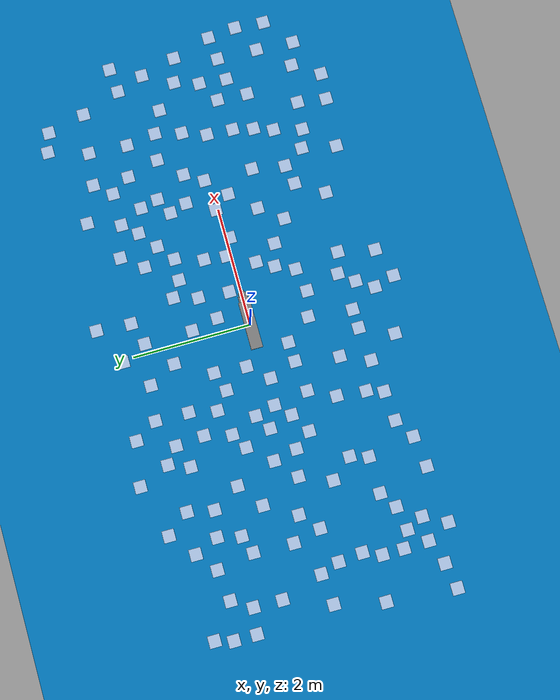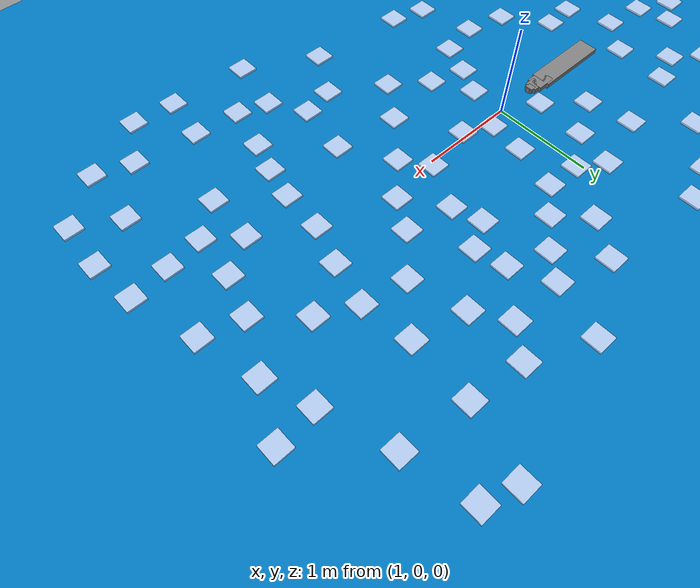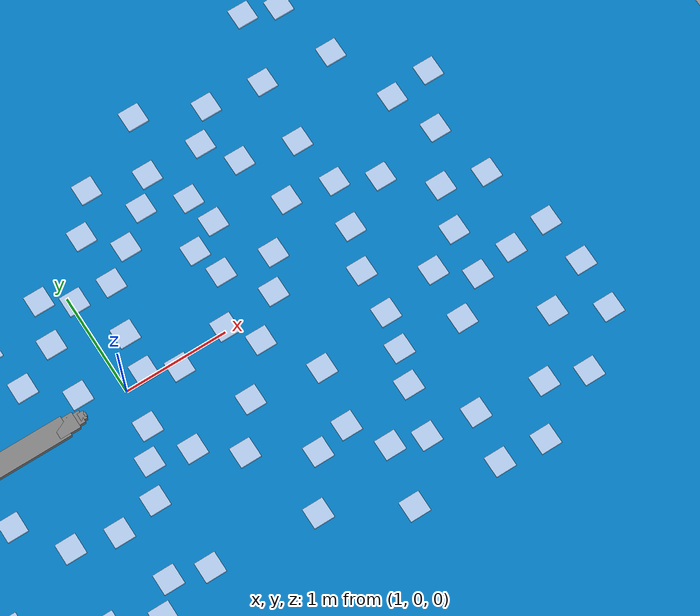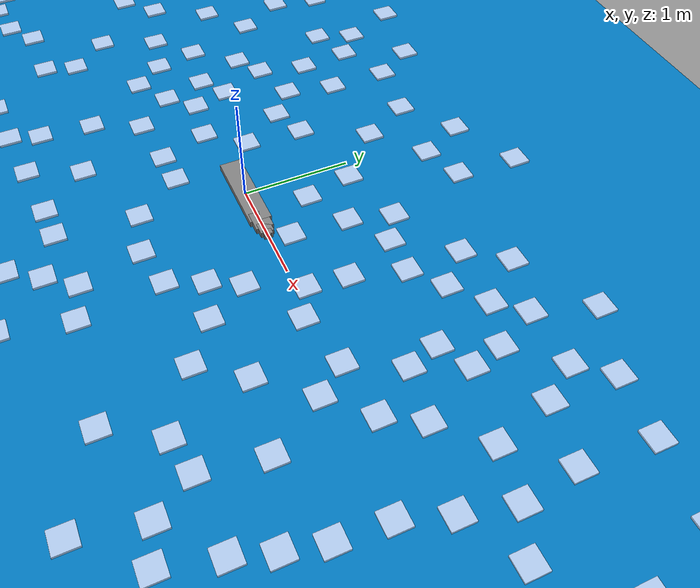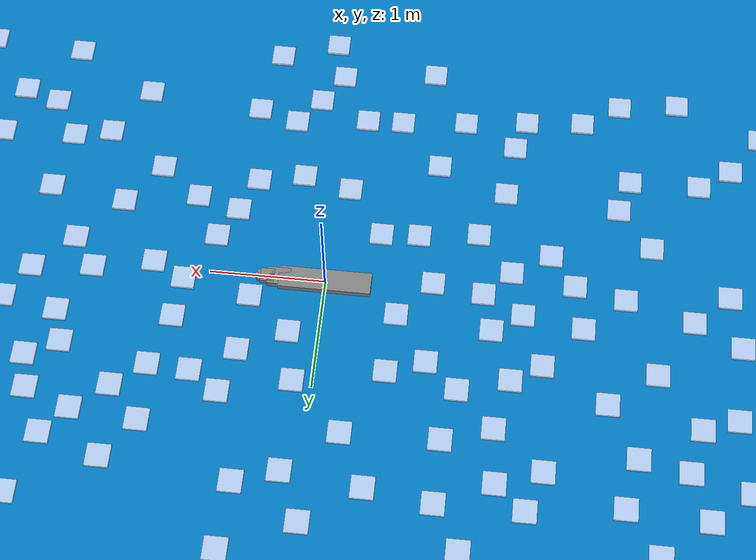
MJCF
<mujoco model="asv_with_ice_random">
  <compiler angle="degree"/>
  <option gravity="0 0 -9.81"/>

  <worldbody>

    <light directional="true" ambient="0.2 0.2 0.2" diffuse="0.8 0.8 0.8" specular="0.3 0.3 0.3" castshadow="false" pos="0 0 4" dir="0 0 -1" name="light0"></light>

    <camera name="follow_asv" mode="fixed" target="asv" pos="0 0 10" euler="30 0 0"/>

    <geom type="plane" size="10 5 0.1" rgba="0 0.47 0.74 1"
        contype="0" conaffinity="0"/>

    <!-- ASV -->
    <body name="asv" pos="0 0 0">
      <joint name="asv_x" type="slide" axis="1 0 0"/>
      <joint name="asv_y" type="slide" axis="0 1 0"/>
      <joint name="asv_yaw" type="hinge" axis="0 0 1"/>

      <geom type="box" size="0.4 0.1 0.05" pos="0 0 0" friction="0.00 0.00 0.00"/>

      <geom type="box" size="0.1 0.08 0.05" pos="0.4 0 0"  friction="0.00 0.00 0.00"/>

      <geom type="box" size="0.06 0.06 0.05" pos="0.5 0 0"  friction="0.00 0.00 0.00"/>

      <geom type="box" size="0.03 0.04 0.05" pos="0.56 0 0"  friction="0.00 0.00 0.00"/>

      <geom type="box" size="0.01 0.02 0.05" pos="0.59 0 0"  friction="0.00 0.00 0.00"/>

      <camera name="follow_asv1" mode="track" target="asv" pos="0 0 10" euler="30 0 0"/>

    </body>

    <body name="ice_0" pos="-3.67 1.58 0">
      <joint name="ice_0_x" type="slide" axis="1 0 0"/>
      <joint name="ice_0_y" type="slide" axis="0 1 0"/>
      <joint name="ice_0_yaw" type="hinge" axis="0 0 1"/>
      <geom type="box" size="0.1 0.1 0.02" rgba="0.9 0.9 1.0 0.8" friction="0.00 0.00 0.00"/>
    </body>
    <body name="ice_1" pos="-0.52 1.84 0">
      <joint name="ice_1_x" type="slide" axis="1 0 0"/>
      <joint name="ice_1_y" type="slide" axis="0 1 0"/>
      <joint name="ice_1_yaw" type="hinge" axis="0 0 1"/>
      <geom type="box" size="0.1 0.1 0.02" rgba="0.9 0.9 1.0 0.8" friction="0.00 0.00 0.00"/>
    </body>
    <body name="ice_2" pos="-1.46 0.32 0">
      <joint name="ice_2_x" type="slide" axis="1 0 0"/>
      <joint name="ice_2_y" type="slide" axis="0 1 0"/>
      <joint name="ice_2_yaw" type="hinge" axis="0 0 1"/>
      <geom type="box" size="0.1 0.1 0.02" rgba="0.9 0.9 1.0 0.8" friction="0.00 0.00 0.00"/>
    </body>
    <body name="ice_3" pos="-3.18 0.08 0">
      <joint name="ice_3_x" type="slide" axis="1 0 0"/>
      <joint name="ice_3_y" type="slide" axis="0 1 0"/>
      <joint name="ice_3_yaw" type="hinge" axis="0 0 1"/>
      <geom type="box" size="0.1 0.1 0.02" rgba="0.9 0.9 1.0 0.8" friction="0.00 0.00 0.00"/>
    </body>
    <body name="ice_4" pos="-4.15 -1.40 0">
      <joint name="ice_4_x" type="slide" axis="1 0 0"/>
      <joint name="ice_4_y" type="slide" axis="0 1 0"/>
      <joint name="ice_4_yaw" type="hinge" axis="0 0 1"/>
      <geom type="box" size="0.1 0.1 0.02" rgba="0.9 0.9 1.0 0.8" friction="0.00 0.00 0.00"/>
    </body>
    <body name="ice_5" pos="1.66 1.78 0">
      <joint name="ice_5_x" type="slide" axis="1 0 0"/>
      <joint name="ice_5_y" type="slide" axis="0 1 0"/>
      <joint name="ice_5_yaw" type="hinge" axis="0 0 1"/>
      <geom type="box" size="0.1 0.1 0.02" rgba="0.9 0.9 1.0 0.8" friction="0.00 0.00 0.00"/>
    </body>
    <body name="ice_6" pos="2.22 -0.23 0">
      <joint name="ice_6_x" type="slide" axis="1 0 0"/>
      <joint name="ice_6_y" type="slide" axis="0 1 0"/>
      <joint name="ice_6_yaw" type="hinge" axis="0 0 1"/>
      <geom type="box" size="0.1 0.1 0.02" rgba="0.9 0.9 1.0 0.8" friction="0.00 0.00 0.00"/>
    </body>
    <body name="ice_7" pos="3.27 -0.60 0">
      <joint name="ice_7_x" type="slide" axis="1 0 0"/>
      <joint name="ice_7_y" type="slide" axis="0 1 0"/>
      <joint name="ice_7_yaw" type="hinge" axis="0 0 1"/>
      <geom type="box" size="0.1 0.1 0.02" rgba="0.9 0.9 1.0 0.8" friction="0.00 0.00 0.00"/>
    </body>
    <body name="ice_8" pos="3.44 0.24 0">
      <joint name="ice_8_x" type="slide" axis="1 0 0"/>
      <joint name="ice_8_y" type="slide" axis="0 1 0"/>
      <joint name="ice_8_yaw" type="hinge" axis="0 0 1"/>
      <geom type="box" size="0.1 0.1 0.02" rgba="0.9 0.9 1.0 0.8" friction="0.00 0.00 0.00"/>
    </body>
    <body name="ice_9" pos="4.46 -1.99 0">
      <joint name="ice_9_x" type="slide" axis="1 0 0"/>
      <joint name="ice_9_y" type="slide" axis="0 1 0"/>
      <joint name="ice_9_yaw" type="hinge" axis="0 0 1"/>
      <geom type="box" size="0.1 0.1 0.02" rgba="0.9 0.9 1.0 0.8" friction="0.00 0.00 0.00"/>
    </body>
    <body name="ice_10" pos="-3.74 -1.83 0">
      <joint name="ice_10_x" type="slide" axis="1 0 0"/>
      <joint name="ice_10_y" type="slide" axis="0 1 0"/>
      <joint name="ice_10_yaw" type="hinge" axis="0 0 1"/>
      <geom type="box" size="0.1 0.1 0.02" rgba="0.9 0.9 1.0 0.8" friction="0.00 0.00 0.00"/>
    </body>
    <body name="ice_11" pos="-1.33 2.30 0">
      <joint name="ice_11_x" type="slide" axis="1 0 0"/>
      <joint name="ice_11_y" type="slide" axis="0 1 0"/>
      <joint name="ice_11_yaw" type="hinge" axis="0 0 1"/>
      <geom type="box" size="0.1 0.1 0.02" rgba="0.9 0.9 1.0 0.8" friction="0.00 0.00 0.00"/>
    </body>
    <body name="ice_12" pos="3.92 0.50 0">
      <joint name="ice_12_x" type="slide" axis="1 0 0"/>
      <joint name="ice_12_y" type="slide" axis="0 1 0"/>
      <joint name="ice_12_yaw" type="hinge" axis="0 0 1"/>
      <geom type="box" size="0.1 0.1 0.02" rgba="0.9 0.9 1.0 0.8" friction="0.00 0.00 0.00"/>
    </body>
    <body name="ice_13" pos="1.22 0.08 0">
      <joint name="ice_13_x" type="slide" axis="1 0 0"/>
      <joint name="ice_13_y" type="slide" axis="0 1 0"/>
      <joint name="ice_13_yaw" type="hinge" axis="0 0 1"/>
      <geom type="box" size="0.1 0.1 0.02" rgba="0.9 0.9 1.0 0.8" friction="0.00 0.00 0.00"/>
    </body>
    <body name="ice_14" pos="-1.29 -0.60 0">
      <joint name="ice_14_x" type="slide" axis="1 0 0"/>
      <joint name="ice_14_y" type="slide" axis="0 1 0"/>
      <joint name="ice_14_yaw" type="hinge" axis="0 0 1"/>
      <geom type="box" size="0.1 0.1 0.02" rgba="0.9 0.9 1.0 0.8" friction="0.00 0.00 0.00"/>
    </body>
    <body name="ice_15" pos="2.74 1.62 0">
      <joint name="ice_15_x" type="slide" axis="1 0 0"/>
      <joint name="ice_15_y" type="slide" axis="0 1 0"/>
      <joint name="ice_15_yaw" type="hinge" axis="0 0 1"/>
      <geom type="box" size="0.1 0.1 0.02" rgba="0.9 0.9 1.0 0.8" friction="0.00 0.00 0.00"/>
    </body>
    <body name="ice_16" pos="-2.50 -0.97 0">
      <joint name="ice_16_x" type="slide" axis="1 0 0"/>
      <joint name="ice_16_y" type="slide" axis="0 1 0"/>
      <joint name="ice_16_yaw" type="hinge" axis="0 0 1"/>
      <geom type="box" size="0.1 0.1 0.02" rgba="0.9 0.9 1.0 0.8" friction="0.00 0.00 0.00"/>
    </body>
    <body name="ice_17" pos="4.97 -1.11 0">
      <joint name="ice_17_x" type="slide" axis="1 0 0"/>
      <joint name="ice_17_y" type="slide" axis="0 1 0"/>
      <joint name="ice_17_yaw" type="hinge" axis="0 0 1"/>
      <geom type="box" size="0.1 0.1 0.02" rgba="0.9 0.9 1.0 0.8" friction="0.00 0.00 0.00"/>
    </body>
    <body name="ice_18" pos="-2.74 1.37 0">
      <joint name="ice_18_x" type="slide" axis="1 0 0"/>
      <joint name="ice_18_y" type="slide" axis="0 1 0"/>
      <joint name="ice_18_yaw" type="hinge" axis="0 0 1"/>
      <geom type="box" size="0.1 0.1 0.02" rgba="0.9 0.9 1.0 0.8" friction="0.00 0.00 0.00"/>
    </body>
    <body name="ice_19" pos="-3.17 1.45 0">
      <joint name="ice_19_x" type="slide" axis="1 0 0"/>
      <joint name="ice_19_y" type="slide" axis="0 1 0"/>
      <joint name="ice_19_yaw" type="hinge" axis="0 0 1"/>
      <geom type="box" size="0.1 0.1 0.02" rgba="0.9 0.9 1.0 0.8" friction="0.00 0.00 0.00"/>
    </body>
    <body name="ice_20" pos="3.36 -2.26 0">
      <joint name="ice_20_x" type="slide" axis="1 0 0"/>
      <joint name="ice_20_y" type="slide" axis="0 1 0"/>
      <joint name="ice_20_yaw" type="hinge" axis="0 0 1"/>
      <geom type="box" size="0.1 0.1 0.02" rgba="0.9 0.9 1.0 0.8" friction="0.00 0.00 0.00"/>
    </body>
    <body name="ice_21" pos="3.80 -1.00 0">
      <joint name="ice_21_x" type="slide" axis="1 0 0"/>
      <joint name="ice_21_y" type="slide" axis="0 1 0"/>
      <joint name="ice_21_yaw" type="hinge" axis="0 0 1"/>
      <geom type="box" size="0.1 0.1 0.02" rgba="0.9 0.9 1.0 0.8" friction="0.00 0.00 0.00"/>
    </body>
    <body name="ice_22" pos="-1.37 -0.02 0">
      <joint name="ice_22_x" type="slide" axis="1 0 0"/>
      <joint name="ice_22_y" type="slide" axis="0 1 0"/>
      <joint name="ice_22_yaw" type="hinge" axis="0 0 1"/>
      <geom type="box" size="0.1 0.1 0.02" rgba="0.9 0.9 1.0 0.8" friction="0.00 0.00 0.00"/>
    </body>
    <body name="ice_23" pos="-4.69 -0.07 0">
      <joint name="ice_23_x" type="slide" axis="1 0 0"/>
      <joint name="ice_23_y" type="slide" axis="0 1 0"/>
      <joint name="ice_23_yaw" type="hinge" axis="0 0 1"/>
      <geom type="box" size="0.1 0.1 0.02" rgba="0.9 0.9 1.0 0.8" friction="0.00 0.00 0.00"/>
    </body>
    <body name="ice_24" pos="3.10 0.76 0">
      <joint name="ice_24_x" type="slide" axis="1 0 0"/>
      <joint name="ice_24_y" type="slide" axis="0 1 0"/>
      <joint name="ice_24_yaw" type="hinge" axis="0 0 1"/>
      <geom type="box" size="0.1 0.1 0.02" rgba="0.9 0.9 1.0 0.8" friction="0.00 0.00 0.00"/>
    </body>
    <body name="ice_25" pos="4.42 1.09 0">
      <joint name="ice_25_x" type="slide" axis="1 0 0"/>
      <joint name="ice_25_y" type="slide" axis="0 1 0"/>
      <joint name="ice_25_yaw" type="hinge" axis="0 0 1"/>
      <geom type="box" size="0.1 0.1 0.02" rgba="0.9 0.9 1.0 0.8" friction="0.00 0.00 0.00"/>
    </body>
    <body name="ice_26" pos="1.21 -0.75 0">
      <joint name="ice_26_x" type="slide" axis="1 0 0"/>
      <joint name="ice_26_y" type="slide" axis="0 1 0"/>
      <joint name="ice_26_yaw" type="hinge" axis="0 0 1"/>
      <geom type="box" size="0.1 0.1 0.02" rgba="0.9 0.9 1.0 0.8" friction="0.00 0.00 0.00"/>
    </body>
    <body name="ice_27" pos="-0.77 -0.54 0">
      <joint name="ice_27_x" type="slide" axis="1 0 0"/>
      <joint name="ice_27_y" type="slide" axis="0 1 0"/>
      <joint name="ice_27_yaw" type="hinge" axis="0 0 1"/>
      <geom type="box" size="0.1 0.1 0.02" rgba="0.9 0.9 1.0 0.8" friction="0.00 0.00 0.00"/>
    </body>
    <body name="ice_28" pos="4.93 -1.60 0">
      <joint name="ice_28_x" type="slide" axis="1 0 0"/>
      <joint name="ice_28_y" type="slide" axis="0 1 0"/>
      <joint name="ice_28_yaw" type="hinge" axis="0 0 1"/>
      <geom type="box" size="0.1 0.1 0.02" rgba="0.9 0.9 1.0 0.8" friction="0.00 0.00 0.00"/>
    </body>
    <body name="ice_29" pos="3.48 1.18 0">
      <joint name="ice_29_x" type="slide" axis="1 0 0"/>
      <joint name="ice_29_y" type="slide" axis="0 1 0"/>
      <joint name="ice_29_yaw" type="hinge" axis="0 0 1"/>
      <geom type="box" size="0.1 0.1 0.02" rgba="0.9 0.9 1.0 0.8" friction="0.00 0.00 0.00"/>
    </body>
    <body name="ice_30" pos="0.99 -0.37 0">
      <joint name="ice_30_x" type="slide" axis="1 0 0"/>
      <joint name="ice_30_y" type="slide" axis="0 1 0"/>
      <joint name="ice_30_yaw" type="hinge" axis="0 0 1"/>
      <geom type="box" size="0.1 0.1 0.02" rgba="0.9 0.9 1.0 0.8" friction="0.00 0.00 0.00"/>
    </body>
    <body name="ice_31" pos="-1.97 1.56 0">
      <joint name="ice_31_x" type="slide" axis="1 0 0"/>
      <joint name="ice_31_y" type="slide" axis="0 1 0"/>
      <joint name="ice_31_yaw" type="hinge" axis="0 0 1"/>
      <geom type="box" size="0.1 0.1 0.02" rgba="0.9 0.9 1.0 0.8" friction="0.00 0.00 0.00"/>
    </body>
    <body name="ice_32" pos="0.16 -2.50 0">
      <joint name="ice_32_x" type="slide" axis="1 0 0"/>
      <joint name="ice_32_y" type="slide" axis="0 1 0"/>
      <joint name="ice_32_yaw" type="hinge" axis="0 0 1"/>
      <geom type="box" size="0.1 0.1 0.02" rgba="0.9 0.9 1.0 0.8" friction="0.00 0.00 0.00"/>
    </body>
    <body name="ice_33" pos="2.55 0.09 0">
      <joint name="ice_33_x" type="slide" axis="1 0 0"/>
      <joint name="ice_33_y" type="slide" axis="0 1 0"/>
      <joint name="ice_33_yaw" type="hinge" axis="0 0 1"/>
      <geom type="box" size="0.1 0.1 0.02" rgba="0.9 0.9 1.0 0.8" friction="0.00 0.00 0.00"/>
    </body>
    <body name="ice_34" pos="2.96 -1.73 0">
      <joint name="ice_34_x" type="slide" axis="1 0 0"/>
      <joint name="ice_34_y" type="slide" axis="0 1 0"/>
      <joint name="ice_34_yaw" type="hinge" axis="0 0 1"/>
      <geom type="box" size="0.1 0.1 0.02" rgba="0.9 0.9 1.0 0.8" friction="0.00 0.00 0.00"/>
    </body>
    <body name="ice_35" pos="4.50 -1.36 0">
      <joint name="ice_35_x" type="slide" axis="1 0 0"/>
      <joint name="ice_35_y" type="slide" axis="0 1 0"/>
      <joint name="ice_35_yaw" type="hinge" axis="0 0 1"/>
      <geom type="box" size="0.1 0.1 0.02" rgba="0.9 0.9 1.0 0.8" friction="0.00 0.00 0.00"/>
    </body>
    <body name="ice_36" pos="-2.94 2.19 0">
      <joint name="ice_36_x" type="slide" axis="1 0 0"/>
      <joint name="ice_36_y" type="slide" axis="0 1 0"/>
      <joint name="ice_36_yaw" type="hinge" axis="0 0 1"/>
      <geom type="box" size="0.1 0.1 0.02" rgba="0.9 0.9 1.0 0.8" friction="0.00 0.00 0.00"/>
    </body>
    <body name="ice_37" pos="4.73 0.03 0">
      <joint name="ice_37_x" type="slide" axis="1 0 0"/>
      <joint name="ice_37_y" type="slide" axis="0 1 0"/>
      <joint name="ice_37_yaw" type="hinge" axis="0 0 1"/>
      <geom type="box" size="0.1 0.1 0.02" rgba="0.9 0.9 1.0 0.8" friction="0.00 0.00 0.00"/>
    </body>
    <body name="ice_38" pos="0.79 -1.72 0">
      <joint name="ice_38_x" type="slide" axis="1 0 0"/>
      <joint name="ice_38_y" type="slide" axis="0 1 0"/>
      <joint name="ice_38_yaw" type="hinge" axis="0 0 1"/>
      <geom type="box" size="0.1 0.1 0.02" rgba="0.9 0.9 1.0 0.8" friction="0.00 0.00 0.00"/>
    </body>
    <body name="ice_39" pos="1.50 -0.06 0">
      <joint name="ice_39_x" type="slide" axis="1 0 0"/>
      <joint name="ice_39_y" type="slide" axis="0 1 0"/>
      <joint name="ice_39_yaw" type="hinge" axis="0 0 1"/>
      <geom type="box" size="0.1 0.1 0.02" rgba="0.9 0.9 1.0 0.8" friction="0.00 0.00 0.00"/>
    </body>
    <body name="ice_40" pos="-2.59 -0.08 0">
      <joint name="ice_40_x" type="slide" axis="1 0 0"/>
      <joint name="ice_40_y" type="slide" axis="0 1 0"/>
      <joint name="ice_40_yaw" type="hinge" axis="0 0 1"/>
      <geom type="box" size="0.1 0.1 0.02" rgba="0.9 0.9 1.0 0.8" friction="0.00 0.00 0.00"/>
    </body>
    <body name="ice_41" pos="2.53 -0.73 0">
      <joint name="ice_41_x" type="slide" axis="1 0 0"/>
      <joint name="ice_41_y" type="slide" axis="0 1 0"/>
      <joint name="ice_41_yaw" type="hinge" axis="0 0 1"/>
      <geom type="box" size="0.1 0.1 0.02" rgba="0.9 0.9 1.0 0.8" friction="0.00 0.00 0.00"/>
    </body>
    <body name="ice_42" pos="1.86 -0.64 0">
      <joint name="ice_42_x" type="slide" axis="1 0 0"/>
      <joint name="ice_42_y" type="slide" axis="0 1 0"/>
      <joint name="ice_42_yaw" type="hinge" axis="0 0 1"/>
      <geom type="box" size="0.1 0.1 0.02" rgba="0.9 0.9 1.0 0.8" friction="0.00 0.00 0.00"/>
    </body>
    <body name="ice_43" pos="2.43 -1.28 0">
      <joint name="ice_43_x" type="slide" axis="1 0 0"/>
      <joint name="ice_43_y" type="slide" axis="0 1 0"/>
      <joint name="ice_43_yaw" type="hinge" axis="0 0 1"/>
      <geom type="box" size="0.1 0.1 0.02" rgba="0.9 0.9 1.0 0.8" friction="0.00 0.00 0.00"/>
    </body>
    <body name="ice_44" pos="1.26 0.45 0">
      <joint name="ice_44_x" type="slide" axis="1 0 0"/>
      <joint name="ice_44_y" type="slide" axis="0 1 0"/>
      <joint name="ice_44_yaw" type="hinge" axis="0 0 1"/>
      <geom type="box" size="0.1 0.1 0.02" rgba="0.9 0.9 1.0 0.8" friction="0.00 0.00 0.00"/>
    </body>
    <body name="ice_45" pos="-1.65 0.77 0">
      <joint name="ice_45_x" type="slide" axis="1 0 0"/>
      <joint name="ice_45_y" type="slide" axis="0 1 0"/>
      <joint name="ice_45_yaw" type="hinge" axis="0 0 1"/>
      <geom type="box" size="0.1 0.1 0.02" rgba="0.9 0.9 1.0 0.8" friction="0.00 0.00 0.00"/>
    </body>
    <body name="ice_46" pos="-2.59 -1.27 0">
      <joint name="ice_46_x" type="slide" axis="1 0 0"/>
      <joint name="ice_46_y" type="slide" axis="0 1 0"/>
      <joint name="ice_46_yaw" type="hinge" axis="0 0 1"/>
      <geom type="box" size="0.1 0.1 0.02" rgba="0.9 0.9 1.0 0.8" friction="0.00 0.00 0.00"/>
    </body>
    <body name="ice_47" pos="-4.88 -0.89 0">
      <joint name="ice_47_x" type="slide" axis="1 0 0"/>
      <joint name="ice_47_y" type="slide" axis="0 1 0"/>
      <joint name="ice_47_yaw" type="hinge" axis="0 0 1"/>
      <geom type="box" size="0.1 0.1 0.02" rgba="0.9 0.9 1.0 0.8" friction="0.00 0.00 0.00"/>
    </body>
    <body name="ice_48" pos="0.26 0.50 0">
      <joint name="ice_48_x" type="slide" axis="1 0 0"/>
      <joint name="ice_48_y" type="slide" axis="0 1 0"/>
      <joint name="ice_48_yaw" type="hinge" axis="0 0 1"/>
      <geom type="box" size="0.1 0.1 0.02" rgba="0.9 0.9 1.0 0.8" friction="0.00 0.00 0.00"/>
    </body>
    <body name="ice_49" pos="0.84 -0.65 0">
      <joint name="ice_49_x" type="slide" axis="1 0 0"/>
      <joint name="ice_49_y" type="slide" axis="0 1 0"/>
      <joint name="ice_49_yaw" type="hinge" axis="0 0 1"/>
      <geom type="box" size="0.1 0.1 0.02" rgba="0.9 0.9 1.0 0.8" friction="0.00 0.00 0.00"/>
    </body>
    <body name="ice_50" pos="-1.21 0.90 0">
      <joint name="ice_50_x" type="slide" axis="1 0 0"/>
      <joint name="ice_50_y" type="slide" axis="0 1 0"/>
      <joint name="ice_50_yaw" type="hinge" axis="0 0 1"/>
      <geom type="box" size="0.1 0.1 0.02" rgba="0.9 0.9 1.0 0.8" friction="0.00 0.00 0.00"/>
    </body>
    <body name="ice_51" pos="4.58 0.63 0">
      <joint name="ice_51_x" type="slide" axis="1 0 0"/>
      <joint name="ice_51_y" type="slide" axis="0 1 0"/>
      <joint name="ice_51_yaw" type="hinge" axis="0 0 1"/>
      <geom type="box" size="0.1 0.1 0.02" rgba="0.9 0.9 1.0 0.8" friction="0.00 0.00 0.00"/>
    </body>
    <body name="ice_52" pos="2.02 0.04 0">
      <joint name="ice_52_x" type="slide" axis="1 0 0"/>
      <joint name="ice_52_y" type="slide" axis="0 1 0"/>
      <joint name="ice_52_yaw" type="hinge" axis="0 0 1"/>
      <geom type="box" size="0.1 0.1 0.02" rgba="0.9 0.9 1.0 0.8" friction="0.00 0.00 0.00"/>
    </body>
    <body name="ice_53" pos="3.43 -1.78 0">
      <joint name="ice_53_x" type="slide" axis="1 0 0"/>
      <joint name="ice_53_y" type="slide" axis="0 1 0"/>
      <joint name="ice_53_yaw" type="hinge" axis="0 0 1"/>
      <geom type="box" size="0.1 0.1 0.02" rgba="0.9 0.9 1.0 0.8" friction="0.00 0.00 0.00"/>
    </body>
    <body name="ice_54" pos="2.26 0.49 0">
      <joint name="ice_54_x" type="slide" axis="1 0 0"/>
      <joint name="ice_54_y" type="slide" axis="0 1 0"/>
      <joint name="ice_54_yaw" type="hinge" axis="0 0 1"/>
      <geom type="box" size="0.1 0.1 0.02" rgba="0.9 0.9 1.0 0.8" friction="0.00 0.00 0.00"/>
    </body>
    <body name="ice_55" pos="2.17 0.78 0">
      <joint name="ice_55_x" type="slide" axis="1 0 0"/>
      <joint name="ice_55_y" type="slide" axis="0 1 0"/>
      <joint name="ice_55_yaw" type="hinge" axis="0 0 1"/>
      <geom type="box" size="0.1 0.1 0.02" rgba="0.9 0.9 1.0 0.8" friction="0.00 0.00 0.00"/>
    </body>
    <body name="ice_56" pos="-1.09 -1.75 0">
      <joint name="ice_56_x" type="slide" axis="1 0 0"/>
      <joint name="ice_56_y" type="slide" axis="0 1 0"/>
      <joint name="ice_56_yaw" type="hinge" axis="0 0 1"/>
      <geom type="box" size="0.1 0.1 0.02" rgba="0.9 0.9 1.0 0.8" friction="0.00 0.00 0.00"/>
    </body>
    <body name="ice_57" pos="-2.06 2.43 0">
      <joint name="ice_57_x" type="slide" axis="1 0 0"/>
      <joint name="ice_57_y" type="slide" axis="0 1 0"/>
      <joint name="ice_57_yaw" type="hinge" axis="0 0 1"/>
      <geom type="box" size="0.1 0.1 0.02" rgba="0.9 0.9 1.0 0.8" friction="0.00 0.00 0.00"/>
    </body>
    <body name="ice_58" pos="-2.47 0.91 0">
      <joint name="ice_58_x" type="slide" axis="1 0 0"/>
      <joint name="ice_58_y" type="slide" axis="0 1 0"/>
      <joint name="ice_58_yaw" type="hinge" axis="0 0 1"/>
      <geom type="box" size="0.1 0.1 0.02" rgba="0.9 0.9 1.0 0.8" friction="0.00 0.00 0.00"/>
    </body>
    <body name="ice_59" pos="4.32 0.14 0">
      <joint name="ice_59_x" type="slide" axis="1 0 0"/>
      <joint name="ice_59_y" type="slide" axis="0 1 0"/>
      <joint name="ice_59_yaw" type="hinge" axis="0 0 1"/>
      <geom type="box" size="0.1 0.1 0.02" rgba="0.9 0.9 1.0 0.8" friction="0.00 0.00 0.00"/>
    </body>
    <body name="ice_60" pos="3.83 -0.49 0">
      <joint name="ice_60_x" type="slide" axis="1 0 0"/>
      <joint name="ice_60_y" type="slide" axis="0 1 0"/>
      <joint name="ice_60_yaw" type="hinge" axis="0 0 1"/>
      <geom type="box" size="0.1 0.1 0.02" rgba="0.9 0.9 1.0 0.8" friction="0.00 0.00 0.00"/>
    </body>
    <body name="ice_61" pos="-1.84 1.91 0">
      <joint name="ice_61_x" type="slide" axis="1 0 0"/>
      <joint name="ice_61_y" type="slide" axis="0 1 0"/>
      <joint name="ice_61_yaw" type="hinge" axis="0 0 1"/>
      <geom type="box" size="0.1 0.1 0.02" rgba="0.9 0.9 1.0 0.8" friction="0.00 0.00 0.00"/>
    </body>
    <body name="ice_62" pos="3.80 -2.30 0">
      <joint name="ice_62_x" type="slide" axis="1 0 0"/>
      <joint name="ice_62_y" type="slide" axis="0 1 0"/>
      <joint name="ice_62_yaw" type="hinge" axis="0 0 1"/>
      <geom type="box" size="0.1 0.1 0.02" rgba="0.9 0.9 1.0 0.8" friction="0.00 0.00 0.00"/>
    </body>
    <body name="ice_63" pos="-4.19 1.51 0">
      <joint name="ice_63_x" type="slide" axis="1 0 0"/>
      <joint name="ice_63_y" type="slide" axis="0 1 0"/>
      <joint name="ice_63_yaw" type="hinge" axis="0 0 1"/>
      <geom type="box" size="0.1 0.1 0.02" rgba="0.9 0.9 1.0 0.8" friction="0.00 0.00 0.00"/>
    </body>
    <body name="ice_64" pos="1.40 0.92 0">
      <joint name="ice_64_x" type="slide" axis="1 0 0"/>
      <joint name="ice_64_y" type="slide" axis="0 1 0"/>
      <joint name="ice_64_yaw" type="hinge" axis="0 0 1"/>
      <geom type="box" size="0.1 0.1 0.02" rgba="0.9 0.9 1.0 0.8" friction="0.00 0.00 0.00"/>
    </body>
    <body name="ice_65" pos="0.59 2.47 0">
      <joint name="ice_65_x" type="slide" axis="1 0 0"/>
      <joint name="ice_65_y" type="slide" axis="0 1 0"/>
      <joint name="ice_65_yaw" type="hinge" axis="0 0 1"/>
      <geom type="box" size="0.1 0.1 0.02" rgba="0.9 0.9 1.0 0.8" friction="0.00 0.00 0.00"/>
    </body>
    <body name="ice_66" pos="4.14 -0.73 0">
      <joint name="ice_66_x" type="slide" axis="1 0 0"/>
      <joint name="ice_66_y" type="slide" axis="0 1 0"/>
      <joint name="ice_66_yaw" type="hinge" axis="0 0 1"/>
      <geom type="box" size="0.1 0.1 0.02" rgba="0.9 0.9 1.0 0.8" friction="0.00 0.00 0.00"/>
    </body>
    <body name="ice_67" pos="1.68 1.14 0">
      <joint name="ice_67_x" type="slide" axis="1 0 0"/>
      <joint name="ice_67_y" type="slide" axis="0 1 0"/>
      <joint name="ice_67_yaw" type="hinge" axis="0 0 1"/>
      <geom type="box" size="0.1 0.1 0.02" rgba="0.9 0.9 1.0 0.8" friction="0.00 0.00 0.00"/>
    </body>
    <body name="ice_68" pos="0.55 1.89 0">
      <joint name="ice_68_x" type="slide" axis="1 0 0"/>
      <joint name="ice_68_y" type="slide" axis="0 1 0"/>
      <joint name="ice_68_yaw" type="hinge" axis="0 0 1"/>
      <geom type="box" size="0.1 0.1 0.02" rgba="0.9 0.9 1.0 0.8" friction="0.00 0.00 0.00"/>
    </body>
    <body name="ice_69" pos="-2.88 0.60 0">
      <joint name="ice_69_x" type="slide" axis="1 0 0"/>
      <joint name="ice_69_y" type="slide" axis="0 1 0"/>
      <joint name="ice_69_yaw" type="hinge" axis="0 0 1"/>
      <geom type="box" size="0.1 0.1 0.02" rgba="0.9 0.9 1.0 0.8" friction="0.00 0.00 0.00"/>
    </body>
    <body name="ice_70" pos="0.66 -2.33 0">
      <joint name="ice_70_x" type="slide" axis="1 0 0"/>
      <joint name="ice_70_y" type="slide" axis="0 1 0"/>
      <joint name="ice_70_yaw" type="hinge" axis="0 0 1"/>
      <geom type="box" size="0.1 0.1 0.02" rgba="0.9 0.9 1.0 0.8" friction="0.00 0.00 0.00"/>
    </body>
    <body name="ice_71" pos="-4.03 -0.74 0">
      <joint name="ice_71_x" type="slide" axis="1 0 0"/>
      <joint name="ice_71_y" type="slide" axis="0 1 0"/>
      <joint name="ice_71_yaw" type="hinge" axis="0 0 1"/>
      <geom type="box" size="0.1 0.1 0.02" rgba="0.9 0.9 1.0 0.8" friction="0.00 0.00 0.00"/>
    </body>
    <body name="ice_72" pos="-0.89 -1.27 0">
      <joint name="ice_72_x" type="slide" axis="1 0 0"/>
      <joint name="ice_72_y" type="slide" axis="0 1 0"/>
      <joint name="ice_72_yaw" type="hinge" axis="0 0 1"/>
      <geom type="box" size="0.1 0.1 0.02" rgba="0.9 0.9 1.0 0.8" friction="0.00 0.00 0.00"/>
    </body>
    <body name="ice_73" pos="-4.18 -0.01 0">
      <joint name="ice_73_x" type="slide" axis="1 0 0"/>
      <joint name="ice_73_y" type="slide" axis="0 1 0"/>
      <joint name="ice_73_yaw" type="hinge" axis="0 0 1"/>
      <geom type="box" size="0.1 0.1 0.02" rgba="0.9 0.9 1.0 0.8" friction="0.00 0.00 0.00"/>
    </body>
    <body name="ice_74" pos="3.52 1.83 0">
      <joint name="ice_74_x" type="slide" axis="1 0 0"/>
      <joint name="ice_74_y" type="slide" axis="0 1 0"/>
      <joint name="ice_74_yaw" type="hinge" axis="0 0 1"/>
      <geom type="box" size="0.1 0.1 0.02" rgba="0.9 0.9 1.0 0.8" friction="0.00 0.00 0.00"/>
    </body>
    <body name="ice_75" pos="4.08 -1.86 0">
      <joint name="ice_75_x" type="slide" axis="1 0 0"/>
      <joint name="ice_75_y" type="slide" axis="0 1 0"/>
      <joint name="ice_75_yaw" type="hinge" axis="0 0 1"/>
      <geom type="box" size="0.1 0.1 0.02" rgba="0.9 0.9 1.0 0.8" friction="0.00 0.00 0.00"/>
    </body>
    <body name="ice_76" pos="-2.15 -0.17 0">
      <joint name="ice_76_x" type="slide" axis="1 0 0"/>
      <joint name="ice_76_y" type="slide" axis="0 1 0"/>
      <joint name="ice_76_yaw" type="hinge" axis="0 0 1"/>
      <geom type="box" size="0.1 0.1 0.02" rgba="0.9 0.9 1.0 0.8" friction="0.00 0.00 0.00"/>
    </body>
    <body name="ice_77" pos="-1.91 0.61 0">
      <joint name="ice_77_x" type="slide" axis="1 0 0"/>
      <joint name="ice_77_y" type="slide" axis="0 1 0"/>
      <joint name="ice_77_yaw" type="hinge" axis="0 0 1"/>
      <geom type="box" size="0.1 0.1 0.02" rgba="0.9 0.9 1.0 0.8" friction="0.00 0.00 0.00"/>
    </body>
    <body name="ice_78" pos="-3.56 0.95 0">
      <joint name="ice_78_x" type="slide" axis="1 0 0"/>
      <joint name="ice_78_y" type="slide" axis="0 1 0"/>
      <joint name="ice_78_yaw" type="hinge" axis="0 0 1"/>
      <geom type="box" size="0.1 0.1 0.02" rgba="0.9 0.9 1.0 0.8" friction="0.00 0.00 0.00"/>
    </body>
    <body name="ice_79" pos="2.37 2.16 0">
      <joint name="ice_79_x" type="slide" axis="1 0 0"/>
      <joint name="ice_79_y" type="slide" axis="0 1 0"/>
      <joint name="ice_79_yaw" type="hinge" axis="0 0 1"/>
      <geom type="box" size="0.1 0.1 0.02" rgba="0.9 0.9 1.0 0.8" friction="0.00 0.00 0.00"/>
    </body>
    <body name="ice_80" pos="2.38 1.23 0">
      <joint name="ice_80_x" type="slide" axis="1 0 0"/>
      <joint name="ice_80_y" type="slide" axis="0 1 0"/>
      <joint name="ice_80_yaw" type="hinge" axis="0 0 1"/>
      <geom type="box" size="0.1 0.1 0.02" rgba="0.9 0.9 1.0 0.8" friction="0.00 0.00 0.00"/>
    </body>
    <body name="ice_81" pos="-0.77 -2.25 0">
      <joint name="ice_81_x" type="slide" axis="1 0 0"/>
      <joint name="ice_81_y" type="slide" axis="0 1 0"/>
      <joint name="ice_81_yaw" type="hinge" axis="0 0 1"/>
      <geom type="box" size="0.1 0.1 0.02" rgba="0.9 0.9 1.0 0.8" friction="0.00 0.00 0.00"/>
    </body>
    <body name="ice_82" pos="-2.65 1.81 0">
      <joint name="ice_82_x" type="slide" axis="1 0 0"/>
      <joint name="ice_82_y" type="slide" axis="0 1 0"/>
      <joint name="ice_82_yaw" type="hinge" axis="0 0 1"/>
      <geom type="box" size="0.1 0.1 0.02" rgba="0.9 0.9 1.0 0.8" friction="0.00 0.00 0.00"/>
    </body>
    <body name="ice_83" pos="1.57 -1.02 0">
      <joint name="ice_83_x" type="slide" axis="1 0 0"/>
      <joint name="ice_83_y" type="slide" axis="0 1 0"/>
      <joint name="ice_83_yaw" type="hinge" axis="0 0 1"/>
      <geom type="box" size="0.1 0.1 0.02" rgba="0.9 0.9 1.0 0.8" friction="0.00 0.00 0.00"/>
    </body>
    <body name="ice_84" pos="2.45 0.93 0">
      <joint name="ice_84_x" type="slide" axis="1 0 0"/>
      <joint name="ice_84_y" type="slide" axis="0 1 0"/>
      <joint name="ice_84_yaw" type="hinge" axis="0 0 1"/>
      <geom type="box" size="0.1 0.1 0.02" rgba="0.9 0.9 1.0 0.8" friction="0.00 0.00 0.00"/>
    </body>
    <body name="ice_85" pos="1.81 -1.81 0">
      <joint name="ice_85_x" type="slide" axis="1 0 0"/>
      <joint name="ice_85_y" type="slide" axis="0 1 0"/>
      <joint name="ice_85_yaw" type="hinge" axis="0 0 1"/>
      <geom type="box" size="0.1 0.1 0.02" rgba="0.9 0.9 1.0 0.8" friction="0.00 0.00 0.00"/>
    </body>
    <body name="ice_86" pos="0.67 0.71 0">
      <joint name="ice_86_x" type="slide" axis="1 0 0"/>
      <joint name="ice_86_y" type="slide" axis="0 1 0"/>
      <joint name="ice_86_yaw" type="hinge" axis="0 0 1"/>
      <geom type="box" size="0.1 0.1 0.02" rgba="0.9 0.9 1.0 0.8" friction="0.00 0.00 0.00"/>
    </body>
    <body name="ice_87" pos="-1.50 -1.04 0">
      <joint name="ice_87_x" type="slide" axis="1 0 0"/>
      <joint name="ice_87_y" type="slide" axis="0 1 0"/>
      <joint name="ice_87_yaw" type="hinge" axis="0 0 1"/>
      <geom type="box" size="0.1 0.1 0.02" rgba="0.9 0.9 1.0 0.8" friction="0.00 0.00 0.00"/>
    </body>
    <body name="ice_88" pos="-1.60 -0.25 0">
      <joint name="ice_88_x" type="slide" axis="1 0 0"/>
      <joint name="ice_88_y" type="slide" axis="0 1 0"/>
      <joint name="ice_88_yaw" type="hinge" axis="0 0 1"/>
      <geom type="box" size="0.1 0.1 0.02" rgba="0.9 0.9 1.0 0.8" friction="0.00 0.00 0.00"/>
    </body>
    <body name="ice_89" pos="2.10 -1.35 0">
      <joint name="ice_89_x" type="slide" axis="1 0 0"/>
      <joint name="ice_89_y" type="slide" axis="0 1 0"/>
      <joint name="ice_89_yaw" type="hinge" axis="0 0 1"/>
      <geom type="box" size="0.1 0.1 0.02" rgba="0.9 0.9 1.0 0.8" friction="0.00 0.00 0.00"/>
    </body>
    <body name="ice_90" pos="3.55 0.68 0">
      <joint name="ice_90_x" type="slide" axis="1 0 0"/>
      <joint name="ice_90_y" type="slide" axis="0 1 0"/>
      <joint name="ice_90_yaw" type="hinge" axis="0 0 1"/>
      <geom type="box" size="0.1 0.1 0.02" rgba="0.9 0.9 1.0 0.8" friction="0.00 0.00 0.00"/>
    </body>
    <body name="ice_91" pos="-4.98 -2.05 0">
      <joint name="ice_91_x" type="slide" axis="1 0 0"/>
      <joint name="ice_91_y" type="slide" axis="0 1 0"/>
      <joint name="ice_91_yaw" type="hinge" axis="0 0 1"/>
      <geom type="box" size="0.1 0.1 0.02" rgba="0.9 0.9 1.0 0.8" friction="0.00 0.00 0.00"/>
    </body>
    <body name="ice_92" pos="3.72 2.49 0">
      <joint name="ice_92_x" type="slide" axis="1 0 0"/>
      <joint name="ice_92_y" type="slide" axis="0 1 0"/>
      <joint name="ice_92_yaw" type="hinge" axis="0 0 1"/>
      <geom type="box" size="0.1 0.1 0.02" rgba="0.9 0.9 1.0 0.8" friction="0.00 0.00 0.00"/>
    </body>
    <body name="ice_93" pos="-2.47 -2.06 0">
      <joint name="ice_93_x" type="slide" axis="1 0 0"/>
      <joint name="ice_93_y" type="slide" axis="0 1 0"/>
      <joint name="ice_93_yaw" type="hinge" axis="0 0 1"/>
      <geom type="box" size="0.1 0.1 0.02" rgba="0.9 0.9 1.0 0.8" friction="0.00 0.00 0.00"/>
    </body>
    <body name="ice_94" pos="-4.81 1.62 0">
      <joint name="ice_94_x" type="slide" axis="1 0 0"/>
      <joint name="ice_94_y" type="slide" axis="0 1 0"/>
      <joint name="ice_94_yaw" type="hinge" axis="0 0 1"/>
      <geom type="box" size="0.1 0.1 0.02" rgba="0.9 0.9 1.0 0.8" friction="0.00 0.00 0.00"/>
    </body>
    <body name="ice_95" pos="4.83 1.13 0">
      <joint name="ice_95_x" type="slide" axis="1 0 0"/>
      <joint name="ice_95_y" type="slide" axis="0 1 0"/>
      <joint name="ice_95_yaw" type="hinge" axis="0 0 1"/>
      <geom type="box" size="0.1 0.1 0.02" rgba="0.9 0.9 1.0 0.8" friction="0.00 0.00 0.00"/>
    </body>
    <body name="ice_96" pos="-2.24 0.23 0">
      <joint name="ice_96_x" type="slide" axis="1 0 0"/>
      <joint name="ice_96_y" type="slide" axis="0 1 0"/>
      <joint name="ice_96_yaw" type="hinge" axis="0 0 1"/>
      <geom type="box" size="0.1 0.1 0.02" rgba="0.9 0.9 1.0 0.8" friction="0.00 0.00 0.00"/>
    </body>
    <body name="ice_97" pos="-1.93 -0.45 0">
      <joint name="ice_97_x" type="slide" axis="1 0 0"/>
      <joint name="ice_97_y" type="slide" axis="0 1 0"/>
      <joint name="ice_97_yaw" type="hinge" axis="0 0 1"/>
      <geom type="box" size="0.1 0.1 0.02" rgba="0.9 0.9 1.0 0.8" friction="0.00 0.00 0.00"/>
    </body>
    <body name="ice_98" pos="0.24 -1.87 0">
      <joint name="ice_98_x" type="slide" axis="1 0 0"/>
      <joint name="ice_98_y" type="slide" axis="0 1 0"/>
      <joint name="ice_98_yaw" type="hinge" axis="0 0 1"/>
      <geom type="box" size="0.1 0.1 0.02" rgba="0.9 0.9 1.0 0.8" friction="0.00 0.00 0.00"/>
    </body>
    <body name="ice_99" pos="3.19 -0.94 0">
      <joint name="ice_99_x" type="slide" axis="1 0 0"/>
      <joint name="ice_99_y" type="slide" axis="0 1 0"/>
      <joint name="ice_99_yaw" type="hinge" axis="0 0 1"/>
      <geom type="box" size="0.1 0.1 0.02" rgba="0.9 0.9 1.0 0.8" friction="0.00 0.00 0.00"/>
    </body>
    <body name="ice_100" pos="0.78 1.11 0">
      <joint name="ice_100_x" type="slide" axis="1 0 0"/>
      <joint name="ice_100_y" type="slide" axis="0 1 0"/>
      <joint name="ice_100_yaw" type="hinge" axis="0 0 1"/>
      <geom type="box" size="0.1 0.1 0.02" rgba="0.9 0.9 1.0 0.8" friction="0.00 0.00 0.00"/>
    </body>
    <body name="ice_101" pos="2.74 0.40 0">
      <joint name="ice_101_x" type="slide" axis="1 0 0"/>
      <joint name="ice_101_y" type="slide" axis="0 1 0"/>
      <joint name="ice_101_yaw" type="hinge" axis="0 0 1"/>
      <geom type="box" size="0.1 0.1 0.02" rgba="0.9 0.9 1.0 0.8" friction="0.00 0.00 0.00"/>
    </body>
    <body name="ice_102" pos="-3.48 -1.47 0">
      <joint name="ice_102_x" type="slide" axis="1 0 0"/>
      <joint name="ice_102_y" type="slide" axis="0 1 0"/>
      <joint name="ice_102_yaw" type="hinge" axis="0 0 1"/>
      <geom type="box" size="0.1 0.1 0.02" rgba="0.9 0.9 1.0 0.8" friction="0.00 0.00 0.00"/>
    </body>
    <body name="ice_103" pos="-4.55 -1.97 0">
      <joint name="ice_103_x" type="slide" axis="1 0 0"/>
      <joint name="ice_103_y" type="slide" axis="0 1 0"/>
      <joint name="ice_103_yaw" type="hinge" axis="0 0 1"/>
      <geom type="box" size="0.1 0.1 0.02" rgba="0.9 0.9 1.0 0.8" friction="0.00 0.00 0.00"/>
    </body>
    <body name="ice_104" pos="2.53 -2.20 0">
      <joint name="ice_104_x" type="slide" axis="1 0 0"/>
      <joint name="ice_104_y" type="slide" axis="0 1 0"/>
      <joint name="ice_104_yaw" type="hinge" axis="0 0 1"/>
      <geom type="box" size="0.1 0.1 0.02" rgba="0.9 0.9 1.0 0.8" friction="0.00 0.00 0.00"/>
    </body>
    <body name="ice_105" pos="-0.12 -0.95 0">
      <joint name="ice_105_x" type="slide" axis="1 0 0"/>
      <joint name="ice_105_y" type="slide" axis="0 1 0"/>
      <joint name="ice_105_yaw" type="hinge" axis="0 0 1"/>
      <geom type="box" size="0.1 0.1 0.02" rgba="0.9 0.9 1.0 0.8" friction="0.00 0.00 0.00"/>
    </body>
    <body name="ice_106" pos="-1.72 0.15 0">
      <joint name="ice_106_x" type="slide" axis="1 0 0"/>
      <joint name="ice_106_y" type="slide" axis="0 1 0"/>
      <joint name="ice_106_yaw" type="hinge" axis="0 0 1"/>
      <geom type="box" size="0.1 0.1 0.02" rgba="0.9 0.9 1.0 0.8" friction="0.00 0.00 0.00"/>
    </body>
    <body name="ice_107" pos="-0.93 -0.08 0">
      <joint name="ice_107_x" type="slide" axis="1 0 0"/>
      <joint name="ice_107_y" type="slide" axis="0 1 0"/>
      <joint name="ice_107_yaw" type="hinge" axis="0 0 1"/>
      <geom type="box" size="0.1 0.1 0.02" rgba="0.9 0.9 1.0 0.8" friction="0.00 0.00 0.00"/>
    </body>
    <body name="ice_108" pos="-2.80 -0.61 0">
      <joint name="ice_108_x" type="slide" axis="1 0 0"/>
      <joint name="ice_108_y" type="slide" axis="0 1 0"/>
      <joint name="ice_108_yaw" type="hinge" axis="0 0 1"/>
      <geom type="box" size="0.1 0.1 0.02" rgba="0.9 0.9 1.0 0.8" friction="0.00 0.00 0.00"/>
    </body>
    <body name="ice_109" pos="3.30 -0.16 0">
      <joint name="ice_109_x" type="slide" axis="1 0 0"/>
      <joint name="ice_109_y" type="slide" axis="0 1 0"/>
      <joint name="ice_109_yaw" type="hinge" axis="0 0 1"/>
      <geom type="box" size="0.1 0.1 0.02" rgba="0.9 0.9 1.0 0.8" friction="0.00 0.00 0.00"/>
    </body>
    <body name="ice_110" pos="-0.93 0.67 0">
      <joint name="ice_110_x" type="slide" axis="1 0 0"/>
      <joint name="ice_110_y" type="slide" axis="0 1 0"/>
      <joint name="ice_110_yaw" type="hinge" axis="0 0 1"/>
      <geom type="box" size="0.1 0.1 0.02" rgba="0.9 0.9 1.0 0.8" friction="0.00 0.00 0.00"/>
    </body>
    <body name="ice_111" pos="-0.20 -1.69 0">
      <joint name="ice_111_x" type="slide" axis="1 0 0"/>
      <joint name="ice_111_y" type="slide" axis="0 1 0"/>
      <joint name="ice_111_yaw" type="hinge" axis="0 0 1"/>
      <geom type="box" size="0.1 0.1 0.02" rgba="0.9 0.9 1.0 0.8" friction="0.00 0.00 0.00"/>
    </body>
    <body name="ice_112" pos="-4.40 0.70 0">
      <joint name="ice_112_x" type="slide" axis="1 0 0"/>
      <joint name="ice_112_y" type="slide" axis="0 1 0"/>
      <joint name="ice_112_yaw" type="hinge" axis="0 0 1"/>
      <geom type="box" size="0.1 0.1 0.02" rgba="0.9 0.9 1.0 0.8" friction="0.00 0.00 0.00"/>
    </body>
    <body name="ice_113" pos="-3.59 0.28 0">
      <joint name="ice_113_x" type="slide" axis="1 0 0"/>
      <joint name="ice_113_y" type="slide" axis="0 1 0"/>
      <joint name="ice_113_yaw" type="hinge" axis="0 0 1"/>
      <geom type="box" size="0.1 0.1 0.02" rgba="0.9 0.9 1.0 0.8" friction="0.00 0.00 0.00"/>
    </body>
    <body name="ice_114" pos="-0.60 0.79 0">
      <joint name="ice_114_x" type="slide" axis="1 0 0"/>
      <joint name="ice_114_y" type="slide" axis="0 1 0"/>
      <joint name="ice_114_yaw" type="hinge" axis="0 0 1"/>
      <geom type="box" size="0.1 0.1 0.02" rgba="0.9 0.9 1.0 0.8" friction="0.00 0.00 0.00"/>
    </body>
    <body name="ice_115" pos="2.65 -1.63 0">
      <joint name="ice_115_x" type="slide" axis="1 0 0"/>
      <joint name="ice_115_y" type="slide" axis="0 1 0"/>
      <joint name="ice_115_yaw" type="hinge" axis="0 0 1"/>
      <geom type="box" size="0.1 0.1 0.02" rgba="0.9 0.9 1.0 0.8" friction="0.00 0.00 0.00"/>
    </body>
    <body name="ice_116" pos="0.44 -1.62 0">
      <joint name="ice_116_x" type="slide" axis="1 0 0"/>
      <joint name="ice_116_y" type="slide" axis="0 1 0"/>
      <joint name="ice_116_yaw" type="hinge" axis="0 0 1"/>
      <geom type="box" size="0.1 0.1 0.02" rgba="0.9 0.9 1.0 0.8" friction="0.00 0.00 0.00"/>
    </body>
    <body name="ice_117" pos="-0.64 0.25 0">
      <joint name="ice_117_x" type="slide" axis="1 0 0"/>
      <joint name="ice_117_y" type="slide" axis="0 1 0"/>
      <joint name="ice_117_yaw" type="hinge" axis="0 0 1"/>
      <geom type="box" size="0.1 0.1 0.02" rgba="0.9 0.9 1.0 0.8" friction="0.00 0.00 0.00"/>
    </body>
    <body name="ice_118" pos="-3.94 -2.21 0">
      <joint name="ice_118_x" type="slide" axis="1 0 0"/>
      <joint name="ice_118_y" type="slide" axis="0 1 0"/>
      <joint name="ice_118_yaw" type="hinge" axis="0 0 1"/>
      <geom type="box" size="0.1 0.1 0.02" rgba="0.9 0.9 1.0 0.8" friction="0.00 0.00 0.00"/>
    </body>
    <body name="ice_119" pos="4.52 -0.68 0">
      <joint name="ice_119_x" type="slide" axis="1 0 0"/>
      <joint name="ice_119_y" type="slide" axis="0 1 0"/>
      <joint name="ice_119_yaw" type="hinge" axis="0 0 1"/>
      <geom type="box" size="0.1 0.1 0.02" rgba="0.9 0.9 1.0 0.8" friction="0.00 0.00 0.00"/>
    </body>
    <body name="ice_120" pos="-0.28 1.38 0">
      <joint name="ice_120_x" type="slide" axis="1 0 0"/>
      <joint name="ice_120_y" type="slide" axis="0 1 0"/>
      <joint name="ice_120_yaw" type="hinge" axis="0 0 1"/>
      <geom type="box" size="0.1 0.1 0.02" rgba="0.9 0.9 1.0 0.8" friction="0.00 0.00 0.00"/>
    </body>
    <body name="ice_121" pos="0.63 0.19 0">
      <joint name="ice_121_x" type="slide" axis="1 0 0"/>
      <joint name="ice_121_y" type="slide" axis="0 1 0"/>
      <joint name="ice_121_yaw" type="hinge" axis="0 0 1"/>
      <geom type="box" size="0.1 0.1 0.02" rgba="0.9 0.9 1.0 0.8" friction="0.00 0.00 0.00"/>
    </body>
    <body name="ice_122" pos="-3.48 -0.19 0">
      <joint name="ice_122_x" type="slide" axis="1 0 0"/>
      <joint name="ice_122_y" type="slide" axis="0 1 0"/>
      <joint name="ice_122_yaw" type="hinge" axis="0 0 1"/>
      <geom type="box" size="0.1 0.1 0.02" rgba="0.9 0.9 1.0 0.8" friction="0.00 0.00 0.00"/>
    </body>
    <body name="ice_123" pos="4.04 2.39 0">
      <joint name="ice_123_x" type="slide" axis="1 0 0"/>
      <joint name="ice_123_y" type="slide" axis="0 1 0"/>
      <joint name="ice_123_yaw" type="hinge" axis="0 0 1"/>
      <geom type="box" size="0.1 0.1 0.02" rgba="0.9 0.9 1.0 0.8" friction="0.00 0.00 0.00"/>
    </body>
    <body name="ice_124" pos="-2.14 -1.85 0">
      <joint name="ice_124_x" type="slide" axis="1 0 0"/>
      <joint name="ice_124_y" type="slide" axis="0 1 0"/>
      <joint name="ice_124_yaw" type="hinge" axis="0 0 1"/>
      <geom type="box" size="0.1 0.1 0.02" rgba="0.9 0.9 1.0 0.8" friction="0.00 0.00 0.00"/>
    </body>
    <body name="ice_125" pos="-1.11 1.36 0">
      <joint name="ice_125_x" type="slide" axis="1 0 0"/>
      <joint name="ice_125_y" type="slide" axis="0 1 0"/>
      <joint name="ice_125_yaw" type="hinge" axis="0 0 1"/>
      <geom type="box" size="0.1 0.1 0.02" rgba="0.9 0.9 1.0 0.8" friction="0.00 0.00 0.00"/>
    </body>
    <body name="ice_126" pos="-4.07 -0.33 0">
      <joint name="ice_126_x" type="slide" axis="1 0 0"/>
      <joint name="ice_126_y" type="slide" axis="0 1 0"/>
      <joint name="ice_126_yaw" type="hinge" axis="0 0 1"/>
      <geom type="box" size="0.1 0.1 0.02" rgba="0.9 0.9 1.0 0.8" friction="0.00 0.00 0.00"/>
    </body>
    <body name="ice_127" pos="-4.15 -1.04 0">
      <joint name="ice_127_x" type="slide" axis="1 0 0"/>
      <joint name="ice_127_y" type="slide" axis="0 1 0"/>
      <joint name="ice_127_yaw" type="hinge" axis="0 0 1"/>
      <geom type="box" size="0.1 0.1 0.02" rgba="0.9 0.9 1.0 0.8" friction="0.00 0.00 0.00"/>
    </body>
    <body name="ice_128" pos="4.92 -0.63 0">
      <joint name="ice_128_x" type="slide" axis="1 0 0"/>
      <joint name="ice_128_y" type="slide" axis="0 1 0"/>
      <joint name="ice_128_yaw" type="hinge" axis="0 0 1"/>
      <geom type="box" size="0.1 0.1 0.02" rgba="0.9 0.9 1.0 0.8" friction="0.00 0.00 0.00"/>
    </body>
    <body name="ice_129" pos="4.19 1.75 0">
      <joint name="ice_129_x" type="slide" axis="1 0 0"/>
      <joint name="ice_129_y" type="slide" axis="0 1 0"/>
      <joint name="ice_129_yaw" type="hinge" axis="0 0 1"/>
      <geom type="box" size="0.1 0.1 0.02" rgba="0.9 0.9 1.0 0.8" friction="0.00 0.00 0.00"/>
    </body>
    <body name="ice_130" pos="0.70 -0.97 0">
      <joint name="ice_130_x" type="slide" axis="1 0 0"/>
      <joint name="ice_130_y" type="slide" axis="0 1 0"/>
      <joint name="ice_130_yaw" type="hinge" axis="0 0 1"/>
      <geom type="box" size="0.1 0.1 0.02" rgba="0.9 0.9 1.0 0.8" friction="0.00 0.00 0.00"/>
    </body>
    <body name="ice_131" pos="-4.39 1.18 0">
      <joint name="ice_131_x" type="slide" axis="1 0 0"/>
      <joint name="ice_131_y" type="slide" axis="0 1 0"/>
      <joint name="ice_131_yaw" type="hinge" axis="0 0 1"/>
      <geom type="box" size="0.1 0.1 0.02" rgba="0.9 0.9 1.0 0.8" friction="0.00 0.00 0.00"/>
    </body>
    <body name="ice_132" pos="2.97 1.90 0">
      <joint name="ice_132_x" type="slide" axis="1 0 0"/>
      <joint name="ice_132_y" type="slide" axis="0 1 0"/>
      <joint name="ice_132_yaw" type="hinge" axis="0 0 1"/>
      <geom type="box" size="0.1 0.1 0.02" rgba="0.9 0.9 1.0 0.8" friction="0.00 0.00 0.00"/>
    </body>
    <body name="ice_133" pos="2.95 1.30 0">
      <joint name="ice_133_x" type="slide" axis="1 0 0"/>
      <joint name="ice_133_y" type="slide" axis="0 1 0"/>
      <joint name="ice_133_yaw" type="hinge" axis="0 0 1"/>
      <geom type="box" size="0.1 0.1 0.02" rgba="0.9 0.9 1.0 0.8" friction="0.00 0.00 0.00"/>
    </body>
    <body name="ice_134" pos="-0.52 -1.70 0">
      <joint name="ice_134_x" type="slide" axis="1 0 0"/>
      <joint name="ice_134_y" type="slide" axis="0 1 0"/>
      <joint name="ice_134_yaw" type="hinge" axis="0 0 1"/>
      <geom type="box" size="0.1 0.1 0.02" rgba="0.9 0.9 1.0 0.8" friction="0.00 0.00 0.00"/>
    </body>
    <body name="ice_135" pos="-3.26 1.06 0">
      <joint name="ice_135_x" type="slide" axis="1 0 0"/>
      <joint name="ice_135_y" type="slide" axis="0 1 0"/>
      <joint name="ice_135_yaw" type="hinge" axis="0 0 1"/>
      <geom type="box" size="0.1 0.1 0.02" rgba="0.9 0.9 1.0 0.8" friction="0.00 0.00 0.00"/>
    </body>
    <body name="ice_136" pos="-1.55 -1.53 0">
      <joint name="ice_136_x" type="slide" axis="1 0 0"/>
      <joint name="ice_136_y" type="slide" axis="0 1 0"/>
      <joint name="ice_136_yaw" type="hinge" axis="0 0 1"/>
      <geom type="box" size="0.1 0.1 0.02" rgba="0.9 0.9 1.0 0.8" friction="0.00 0.00 0.00"/>
    </body>
    <body name="ice_137" pos="0.06 -2.15 0">
      <joint name="ice_137_x" type="slide" axis="1 0 0"/>
      <joint name="ice_137_y" type="slide" axis="0 1 0"/>
      <joint name="ice_137_yaw" type="hinge" axis="0 0 1"/>
      <geom type="box" size="0.1 0.1 0.02" rgba="0.9 0.9 1.0 0.8" friction="0.00 0.00 0.00"/>
    </body>
    <body name="ice_138" pos="-4.73 1.92 0">
      <joint name="ice_138_x" type="slide" axis="1 0 0"/>
      <joint name="ice_138_y" type="slide" axis="0 1 0"/>
      <joint name="ice_138_yaw" type="hinge" axis="0 0 1"/>
      <geom type="box" size="0.1 0.1 0.02" rgba="0.9 0.9 1.0 0.8" friction="0.00 0.00 0.00"/>
    </body>
    <body name="ice_139" pos="4.19 -0.27 0">
      <joint name="ice_139_x" type="slide" axis="1 0 0"/>
      <joint name="ice_139_y" type="slide" axis="0 1 0"/>
      <joint name="ice_139_yaw" type="hinge" axis="0 0 1"/>
      <geom type="box" size="0.1 0.1 0.02" rgba="0.9 0.9 1.0 0.8" friction="0.00 0.00 0.00"/>
    </body>
    <body name="ice_140" pos="0.30 -1.05 0">
      <joint name="ice_140_x" type="slide" axis="1 0 0"/>
      <joint name="ice_140_y" type="slide" axis="0 1 0"/>
      <joint name="ice_140_yaw" type="hinge" axis="0 0 1"/>
      <geom type="box" size="0.1 0.1 0.02" rgba="0.9 0.9 1.0 0.8" friction="0.00 0.00 0.00"/>
    </body>
    <body name="ice_141" pos="-3.20 -1.28 0">
      <joint name="ice_141_x" type="slide" axis="1 0 0"/>
      <joint name="ice_141_y" type="slide" axis="0 1 0"/>
      <joint name="ice_141_yaw" type="hinge" axis="0 0 1"/>
      <geom type="box" size="0.1 0.1 0.02" rgba="0.9 0.9 1.0 0.8" friction="0.00 0.00 0.00"/>
    </body>
    <body name="ice_142" pos="-4.14 -1.82 0">
      <joint name="ice_142_x" type="slide" axis="1 0 0"/>
      <joint name="ice_142_y" type="slide" axis="0 1 0"/>
      <joint name="ice_142_yaw" type="hinge" axis="0 0 1"/>
      <geom type="box" size="0.1 0.1 0.02" rgba="0.9 0.9 1.0 0.8" friction="0.00 0.00 0.00"/>
    </body>
    <body name="ice_143" pos="3.08 -1.26 0">
      <joint name="ice_143_x" type="slide" axis="1 0 0"/>
      <joint name="ice_143_y" type="slide" axis="0 1 0"/>
      <joint name="ice_143_yaw" type="hinge" axis="0 0 1"/>
      <geom type="box" size="0.1 0.1 0.02" rgba="0.9 0.9 1.0 0.8" friction="0.00 0.00 0.00"/>
    </body>
    <body name="ice_144" pos="0.17 1.76 0">
      <joint name="ice_144_x" type="slide" axis="1 0 0"/>
      <joint name="ice_144_y" type="slide" axis="0 1 0"/>
      <joint name="ice_144_yaw" type="hinge" axis="0 0 1"/>
      <geom type="box" size="0.1 0.1 0.02" rgba="0.9 0.9 1.0 0.8" friction="0.00 0.00 0.00"/>
    </body>
    <body name="ice_145" pos="-1.64 -1.81 0">
      <joint name="ice_145_x" type="slide" axis="1 0 0"/>
      <joint name="ice_145_y" type="slide" axis="0 1 0"/>
      <joint name="ice_145_yaw" type="hinge" axis="0 0 1"/>
      <geom type="box" size="0.1 0.1 0.02" rgba="0.9 0.9 1.0 0.8" friction="0.00 0.00 0.00"/>
    </body>
    <body name="ice_146" pos="-1.58 1.70 0">
      <joint name="ice_146_x" type="slide" axis="1 0 0"/>
      <joint name="ice_146_y" type="slide" axis="0 1 0"/>
      <joint name="ice_146_yaw" type="hinge" axis="0 0 1"/>
      <geom type="box" size="0.1 0.1 0.02" rgba="0.9 0.9 1.0 0.8" friction="0.00 0.00 0.00"/>
    </body>
    <body name="ice_147" pos="-1.10 1.92 0">
      <joint name="ice_147_x" type="slide" axis="1 0 0"/>
      <joint name="ice_147_y" type="slide" axis="0 1 0"/>
      <joint name="ice_147_yaw" type="hinge" axis="0 0 1"/>
      <geom type="box" size="0.1 0.1 0.02" rgba="0.9 0.9 1.0 0.8" friction="0.00 0.00 0.00"/>
    </body>
    <body name="ice_148" pos="1.40 1.43 0">
      <joint name="ice_148_x" type="slide" axis="1 0 0"/>
      <joint name="ice_148_y" type="slide" axis="0 1 0"/>
      <joint name="ice_148_yaw" type="hinge" axis="0 0 1"/>
      <geom type="box" size="0.1 0.1 0.02" rgba="0.9 0.9 1.0 0.8" friction="0.00 0.00 0.00"/>
    </body>
    <body name="ice_149" pos="-0.03 2.18 0">
      <joint name="ice_149_x" type="slide" axis="1 0 0"/>
      <joint name="ice_149_y" type="slide" axis="0 1 0"/>
      <joint name="ice_149_yaw" type="hinge" axis="0 0 1"/>
      <geom type="box" size="0.1 0.1 0.02" rgba="0.9 0.9 1.0 0.8" friction="0.00 0.00 0.00"/>
    </body>
    <body name="ice_150" pos="-3.34 1.85 0">
      <joint name="ice_150_x" type="slide" axis="1 0 0"/>
      <joint name="ice_150_y" type="slide" axis="0 1 0"/>
      <joint name="ice_150_yaw" type="hinge" axis="0 0 1"/>
      <geom type="box" size="0.1 0.1 0.02" rgba="0.9 0.9 1.0 0.8" friction="0.00 0.00 0.00"/>
    </body>
    <body name="ice_151" pos="2.19 1.62 0">
      <joint name="ice_151_x" type="slide" axis="1 0 0"/>
      <joint name="ice_151_y" type="slide" axis="0 1 0"/>
      <joint name="ice_151_yaw" type="hinge" axis="0 0 1"/>
      <geom type="box" size="0.1 0.1 0.02" rgba="0.9 0.9 1.0 0.8" friction="0.00 0.00 0.00"/>
    </body>
    <body name="ice_152" pos="-1.54 1.22 0">
      <joint name="ice_152_x" type="slide" axis="1 0 0"/>
      <joint name="ice_152_y" type="slide" axis="0 1 0"/>
      <joint name="ice_152_yaw" type="hinge" axis="0 0 1"/>
      <geom type="box" size="0.1 0.1 0.02" rgba="0.9 0.9 1.0 0.8" friction="0.00 0.00 0.00"/>
    </body>
    <body name="ice_153" pos="-3.88 -1.54 0">
      <joint name="ice_153_x" type="slide" axis="1 0 0"/>
      <joint name="ice_153_y" type="slide" axis="0 1 0"/>
      <joint name="ice_153_yaw" type="hinge" axis="0 0 1"/>
      <geom type="box" size="0.1 0.1 0.02" rgba="0.9 0.9 1.0 0.8" friction="0.00 0.00 0.00"/>
    </body>
    <body name="ice_154" pos="0.17 0.95 0">
      <joint name="ice_154_x" type="slide" axis="1 0 0"/>
      <joint name="ice_154_y" type="slide" axis="0 1 0"/>
      <joint name="ice_154_yaw" type="hinge" axis="0 0 1"/>
      <geom type="box" size="0.1 0.1 0.02" rgba="0.9 0.9 1.0 0.8" friction="0.00 0.00 0.00"/>
    </body>
    <body name="ice_155" pos="-2.99 -2.13 0">
      <joint name="ice_155_x" type="slide" axis="1 0 0"/>
      <joint name="ice_155_y" type="slide" axis="0 1 0"/>
      <joint name="ice_155_yaw" type="hinge" axis="0 0 1"/>
      <geom type="box" size="0.1 0.1 0.02" rgba="0.9 0.9 1.0 0.8" friction="0.00 0.00 0.00"/>
    </body>
    <body name="ice_156" pos="-4.81 1.24 0">
      <joint name="ice_156_x" type="slide" axis="1 0 0"/>
      <joint name="ice_156_y" type="slide" axis="0 1 0"/>
      <joint name="ice_156_yaw" type="hinge" axis="0 0 1"/>
      <geom type="box" size="0.1 0.1 0.02" rgba="0.9 0.9 1.0 0.8" friction="0.00 0.00 0.00"/>
    </body>
    <body name="ice_157" pos="1.04 0.94 0">
      <joint name="ice_157_x" type="slide" axis="1 0 0"/>
      <joint name="ice_157_y" type="slide" axis="0 1 0"/>
      <joint name="ice_157_yaw" type="hinge" axis="0 0 1"/>
      <geom type="box" size="0.1 0.1 0.02" rgba="0.9 0.9 1.0 0.8" friction="0.00 0.00 0.00"/>
    </body>
    <body name="ice_158" pos="-0.44 -0.52 0">
      <joint name="ice_158_x" type="slide" axis="1 0 0"/>
      <joint name="ice_158_y" type="slide" axis="0 1 0"/>
      <joint name="ice_158_yaw" type="hinge" axis="0 0 1"/>
      <geom type="box" size="0.1 0.1 0.02" rgba="0.9 0.9 1.0 0.8" friction="0.00 0.00 0.00"/>
    </body>
    <body name="ice_159" pos="1.98 1.38 0">
      <joint name="ice_159_x" type="slide" axis="1 0 0"/>
      <joint name="ice_159_y" type="slide" axis="0 1 0"/>
      <joint name="ice_159_yaw" type="hinge" axis="0 0 1"/>
      <geom type="box" size="0.1 0.1 0.02" rgba="0.9 0.9 1.0 0.8" friction="0.00 0.00 0.00"/>
    </body>
  </worldbody>

  <actuator>
    <motor name="asv_forward" joint="asv_x" ctrlrange="-200 200" gear="1"/>
    <motor joint="asv_yaw" name="asv_rudder" ctrlrange="-1 1" gear="5"/>
  </actuator>
</mujoco>
